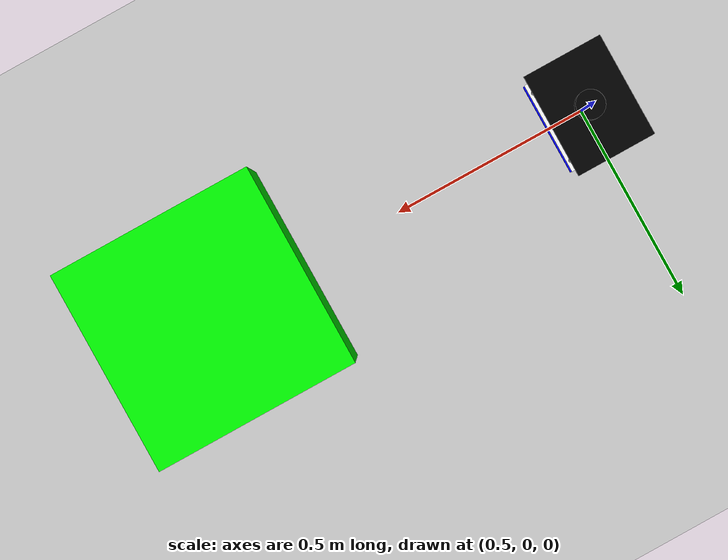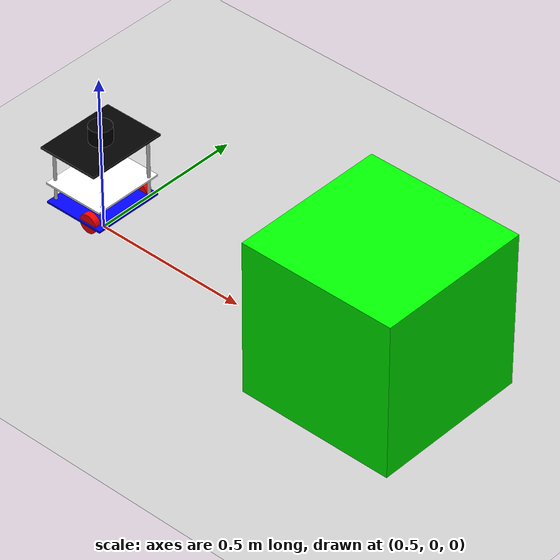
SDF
<?xml version="1.0" ?>
<sdf version="1.8">

  <!--
    Определяем мир (world) под названием "Moving_robot".
    Внутри указываем параметры физики, плагины для симуляции, освещение (sun) и объекты (models).
  -->
  <world name="Moving_robot">

    <physics name="1ms" type="ignored">
      <max_step_size>0.001</max_step_size>
      <real_time_factor>1.0</real_time_factor>
    </physics>

    <plugin filename="gz-sim-physics-system" name="gz::sim::systems::Physics"/>
    <plugin filename="gz-sim-user-commands-system" name="gz::sim::systems::UserCommands"/>
    <plugin filename="gz-sim-scene-broadcaster-system" name="gz::sim::systems::SceneBroadcaster"/>

    <!-- подклюяение плагина сенсоров (в т.ч. лидара) -->
    <plugin
      filename="gz-sim-sensors-system"
      name="gz::sim::systems::Sensors">
      <!-- Обычно указывают движок рендеринга -->
      <render_engine>ogre2</render_engine>
    </plugin>

    <!--
      Настраиваем источник света "sun" (солнечный свет) с заданным направлением,
      интенсивностью (diffuse, specular) и другими параметрами.
    -->
    <light type="directional" name="sun">
      <cast_shadows>true</cast_shadows>
      <pose>0 0 10 0 0 0</pose>
      <diffuse>0.8 0.8 0.8 1</diffuse>
      <specular>0.2 0.2 0.2 1</specular>
      <attenuation>
        <range>1000</range>
        <constant>0.9</constant>
        <linear>0.01</linear>
        <quadratic>0.001</quadratic>
      </attenuation>
      <direction>-0.5 0.1 -0.9</direction>
    </light>

    <!--
      Создаём "землю" (ground_plane) — большая плоскость для пола.
      static=true означает, что объект не участвует в движении, он статичен.
    -->
    <model name="ground_plane">
      <static>true</static>
      <link name="link">
        <collision name="collision">
          <geometry>
            <plane>
              <normal>0 0 1</normal>
            </plane>
          </geometry>
        </collision>
        <visual name="visual">
          <geometry>
            <plane>
              <normal>0 0 1</normal>
              <size>100 100</size>
            </plane>
          </geometry>
          <material>
            <ambient>0.8 0.8 0.8 1</ambient>
            <diffuse>0.8 0.8 0.8 1</diffuse>
            <specular>0.8 0.8 0.8 1</specular>
          </material>
        </visual>
      </link>
    </model>

    <!--
      Модель робота: "my_robot". У него корневым звеном (canonical_link) выступает "chassis".
      pose relative_to='world' означает, что робот будет размещён в абсолютных координатах.
    -->
    <model name='my_robot' canonical_link='chassis'>
      <pose relative_to='world'>0 0 0 0 0 0</pose>

      <link name='chassis'>
        <pose relative_to='__model__'>0.5 0 0.1 0 0 0</pose>
        <inertial>
          <mass>3</mass>
          <inertia>
            <ixx>0.126164</ixx>
            <ixy>0</ixy>
            <ixz>0</ixz>
            <iyy>0.416519</iyy>
            <iyz>0</iyz>
            <izz>0.481014</izz>
          </inertia>
        </inertial>
        <visual name='visual'>
          <geometry>
            <box>
              <size>0.2 0.23 0.006</size>
            </box>
          </geometry>
          <material>
            <ambient>0.0 0.0 1.0 1</ambient>
            <diffuse>0.0 0.0 1.0 1</diffuse>
            <specular>0.0 0.0 1.0 1</specular>
          </material>
        </visual>
        <collision name='collision'>
          <!-- collision важна для реакций физики (сталкивание с объектами) -->
          <geometry>
            <box>
              <size>0.2 0.16 0.006</size>
            </box>
          </geometry>
        </collision>
      </link>

      <link name='left_wheel'>
        <pose relative_to="chassis">0.05 0.10 0 -1.5707 0 0</pose>
        <inertial>
          <mass>0.2</mass>
          <inertia>
            <ixx>0.145833</ixx>
            <ixy>0</ixy>
            <ixz>0</ixz>
            <iyy>0.145833</iyy>
            <iyz>0</iyz>
            <izz>0.125</izz>
          </inertia>
        </inertial>
        <visual name='visual'>
          <geometry>
            <cylinder>
              <radius>0.03</radius>
              <length>0.02</length>
            </cylinder>
          </geometry>
          <material>
            <ambient>1.0 0.0 0.0 1</ambient>
            <diffuse>1.0 0.0 0.0 1</diffuse>
            <specular>1.0 0.0 0.0 1</specular>
          </material>
        </visual>
        <collision name='collision'>
          <geometry>
            <cylinder>
              <radius>0.03</radius>
              <length>0.02</length>
            </cylinder>
          </geometry>
        </collision>
      </link>

      <!--
        Правое колесо (right_wheel).
        Аналогично левому, только y=-0.10.
      -->
      <link name='right_wheel'>
        <pose relative_to="chassis">0.05 -0.10 0 -1.5707 0 0</pose>
        <inertial>
          <mass>0.2</mass>
          <inertia>
            <ixx>0.145833</ixx>
            <ixy>0</ixy>
            <ixz>0</ixz>
            <iyy>0.145833</iyy>
            <iyz>0</iyz>
            <izz>0.125</izz>
          </inertia>
        </inertial>
        <visual name='visual'>
          <geometry>
            <cylinder>
              <radius>0.03</radius>
              <length>0.02</length>
            </cylinder>
          </geometry>
          <material>
            <ambient>1.0 0.0 0.0 1</ambient>
            <diffuse>1.0 0.0 0.0 1</diffuse>
            <specular>1.0 0.0 0.0 1</specular>
          </material>
        </visual>
        <collision name='collision'>
          <geometry>
            <cylinder>
              <radius>0.03</radius>
              <length>0.02</length>
            </cylinder>
          </geometry>
        </collision>
      </link>

      <!--
        frame "caster_frame" привязан к шасси (chassis).
        Это точка, к которой затем крепится link caster (шарообразная опора).
      -->
      <frame name="caster_frame" attached_to='chassis'>
        <pose>-0.07 0 -0.01 0 0 0</pose>
      </frame>

      <!--
        Кастер (caster) - задний опорный шарик.
        Расположен на frame="caster_frame".
        Масса, инерция - условные.
      -->
      <link name='caster'>
        <pose relative_to='caster_frame'/>
        <inertial>
          <mass>0.5</mass>
          <inertia>
            <ixx>0.1</ixx>
            <ixy>0</ixy>
            <ixz>0</ixz>
            <iyy>0.1</iyy>
            <iyz>0</iyz>
            <izz>0.1</izz>
          </inertia>
        </inertial>
        <visual name='visual'>
          <geometry>
            <sphere>
              <radius>0.015</radius>
            </sphere>
          </geometry>
          <material>
            <ambient>0.0 1 0.0 1</ambient>
            <diffuse>0.0 1 0.0 1</diffuse>
            <specular>0.0 1 0.0 1</specular>
          </material>
        </visual>
        <collision name='collision'>
          <geometry>
            <sphere>
              <radius>0.02</radius>
            </sphere>
          </geometry>
        </collision>
      </link>

      <!--
        floor1 - "первый этаж" (промежуточная платформа),
        поднят над шасси на 0.065 м.
        Масса и габариты - условные.
      -->
      <link name="floor1">
        <pose relative_to="chassis">0 0 0.065 0 0 0</pose>
        <inertial>
          <mass>0.8</mass>
          <inertia>
            <ixx>0.01</ixx>
            <ixy>0</ixy>
            <ixz>0</ixz>
            <iyy>0.01</iyy>
            <iyz>0</iyz>
            <izz>0.01</izz>
          </inertia>
        </inertial>
        <visual name="floor1_visual">
          <geometry>
            <box>
              <size>0.2 0.23 0.006</size>
            </box>
          </geometry>
          <material>
            <ambient>1.0 1.0 1.0 1</ambient>
            <diffuse>1.0 1.0 1.0 1</diffuse>
          </material>
        </visual>
        <collision name="floor1_collision">
          <geometry>
            <box>
              <size>0.2 0.23 0.006</size>
            </box>
          </geometry>
        </collision>
      </link>
      <joint name="floor1_joint" type="fixed">
        <parent>chassis</parent>
        <child>floor1</child>
      </joint>

      <!--
        floor2 - "второй этаж" (верхняя платформа),
        на высоте 0.195 над шасси.
      -->
      <link name="floor2">
        <pose relative_to="chassis">0 0 0.195 0 0 0</pose>
        <inertial>
          <mass>0.3</mass>
          <inertia>
            <ixx>0.02</ixx>
            <ixy>0</ixy>
            <ixz>0</ixz>
            <iyy>0.02</iyy>
            <iyz>0</iyz>
            <izz>0.02</izz>
          </inertia>
        </inertial>
        <visual name="floor2_visual">
          <geometry>
            <box>
              <size>0.2 0.26 0.006</size>
            </box>
          </geometry>
          <material>
            <ambient>0.0 0.0 0.0 1</ambient>
            <diffuse>0.0 0.0 0.0 1</diffuse>
          </material>
        </visual>
        <collision name="floor2_collision">
          <geometry>
            <box>
              <size>0.2 0.16 0.006</size>
            </box>
          </geometry>
        </collision>
      </link>
      <joint name="floor2_joint" type="fixed">
        <parent>chassis</parent>
        <child>floor2</child>
      </joint>

      <!-- добавляем действующий лидар с помощью плагина сенсоров -->
      <link name="lidar_link">
        <pose relative_to="floor2">0 0 0.03 0 0 0</pose>
        <inertial>
          <mass>0.2</mass>
          <inertia>
            <ixx>0.001</ixx>
            <ixy>0</ixy>
            <ixz>0</ixz>
            <iyy>0.001</iyy>
            <iyz>0</iyz>
            <izz>0.001</izz>
          </inertia>
        </inertial>
        <visual name="lidar_visual">
          <geometry>
            <cylinder>
              <radius>0.035</radius>
              <length>0.05</length>
            </cylinder>
          </geometry>
          <material>
            <ambient>0 0 0 1</ambient>
            <diffuse>0 0 0 1</diffuse>
          </material>
        </visual>
		    <sensor name="lidar_sensor" type="gpu_ray">
          <frame_id>lidar_link</frame_id>
          <pose>0 0 0 0 0 0</pose>
          <topic>/lidar</topic>
          <update_rate>1</update_rate>
          <ray>
          <scan>
            <horizontal>
            <samples>36</samples>
            <resolution>1</resolution>
            <min_angle>-1.5708</min_angle>
            <max_angle>1.5708</max_angle>
            </horizontal>
            <vertical>
            <samples>1</samples>
            <resolution>0.01</resolution>
            <min_angle>0</min_angle>
            <max_angle>0</max_angle>
            </vertical>
          </scan>
          <range>
            <min>0.08</min>
            <max>2.0</max>
            <resolution>0.01</resolution>
          </range>
          <noise>
            <type>gaussian</type>
            <mean>0.0</mean>
            <stddev>0.01</stddev>
          </noise>
          </ray>
          <always_on>true</always_on>
          <visualize>true</visualize>
        </sensor>
        <collision name="lidar_collision">
          <geometry>
            <cylinder>
              <radius>0.035</radius>
              <length>0.05</length>
            </cylinder>
          </geometry>
        </collision>
      </link>

      <joint name="lidar_joint" type="fixed">
        <parent>floor2</parent>
        <child>lidar_link</child>
      </joint>

      <!--
        Ось вращения левого колеса (left_wheel_joint) - revolute.
        joint подключает parent=chassis, child=left_wheel.
      -->
      <joint name='left_wheel_joint' type='revolute'>
        <pose relative_to='left_wheel'/>
        <parent>chassis</parent>
        <child>left_wheel</child>
        <axis>
          <xyz expressed_in='__model__'>0 1 0</xyz>
          <limit>
            <lower>-1.79769e+308</lower>
            <upper>1.79769e+308</upper>
          </limit>
        </axis>
      </joint>

      <!--
        Аналогично для правого колеса (right_wheel_joint).
      -->
      <joint name='right_wheel_joint' type='revolute'>
        <pose relative_to='right_wheel'/>
        <parent>chassis</parent>
        <child>right_wheel</child>
        <axis>
          <xyz expressed_in='__model__'>0 1 0</xyz>
          <limit>
            <lower>-1.79769e+308</lower>
            <upper>1.79769e+308</upper>
          </limit>
        </axis>
      </joint>

      <!-- Передняя левая стойка -->
      <link name="rod_front_left">
        <pose relative_to="chassis">0.09 0.09 0.1 0 0 0</pose>
        <inertial>
          <mass>0.05</mass>
          <inertia>
            <ixx>1e-5</ixx>
            <ixy>0</ixy>
            <ixz>0</ixz>
            <iyy>1e-5</iyy>
            <iyz>0</iyz>
            <izz>1e-5</izz>
          </inertia>
        </inertial>
        <visual name="visual">
          <geometry>
            <cylinder>
              <radius>0.005</radius>
              <length>0.195</length>
            </cylinder>
          </geometry>
          <material>
            <ambient>0.8 0.8 0.8 1</ambient>
            <diffuse>0.8 0.8 0.8 1</diffuse>
            <specular>0.8 0.8 0.8 1</specular>
          </material>
        </visual>
        <collision name="collision">
          <geometry>
            <cylinder>
              <radius>0.005</radius>
              <length>0.195</length>
            </cylinder>
          </geometry>
        </collision>
      </link>
      <joint name="rod_front_left_joint" type="fixed">
        <parent>chassis</parent>
        <child>rod_front_left</child>
      </joint>

      <!-- Передняя правая стойка -->
      <link name="rod_front_right">
        <pose relative_to="chassis">0.09 -0.09 0.1 0 0 0</pose>
        <inertial>
          <mass>0.05</mass>
          <inertia>
            <ixx>1e-5</ixx>
            <ixy>0</ixy>
            <ixz>0</ixz>
            <iyy>1e-5</iyy>
            <iyz>0</iyz>
            <izz>1e-5</izz>
          </inertia>
        </inertial>
        <visual name="visual">
          <geometry>
            <cylinder>
              <radius>0.005</radius>
              <length>0.195</length>
            </cylinder>
          </geometry>
          <material>
            <ambient>0.8 0.8 0.8 1</ambient>
            <diffuse>0.8 0.8 0.8 1</diffuse>
            <specular>0.8 0.8 0.8 1</specular>
          </material>
        </visual>
        <collision name="collision">
          <geometry>
            <cylinder>
              <radius>0.005</radius>
              <length>0.195</length>
            </cylinder>
          </geometry>
        </collision>
      </link>
      <joint name="rod_front_right_joint" type="fixed">
        <parent>chassis</parent>
        <child>rod_front_right</child>
      </joint>

      <!-- Задняя левая стойка -->
      <link name="rod_rear_left">
        <pose relative_to="chassis">-0.09 0.09 0.1 0 0 0</pose>
        <inertial>
          <mass>0.05</mass>
          <inertia>
            <ixx>1e-5</ixx>
            <ixy>0</ixy>
            <ixz>0</ixz>
            <iyy>1e-5</iyy>
            <iyz>0</iyz>
            <izz>1e-5</izz>
          </inertia>
        </inertial>
        <visual name="visual">
          <geometry>
            <cylinder>
              <radius>0.005</radius>
              <length>0.195</length>
            </cylinder>
          </geometry>
          <material>
            <ambient>0.8 0.8 0.8 1</ambient>
            <diffuse>0.8 0.8 0.8 1</diffuse>
            <specular>0.8 0.8 0.8 1</specular>
          </material>
        </visual>
        <collision name="collision">
          <geometry>
            <cylinder>
              <radius>0.005</radius>
              <length>0.195</length>
            </cylinder>
          </geometry>
        </collision>
      </link>
      <joint name="rod_rear_left_joint" type="fixed">
        <parent>chassis</parent>
        <child>rod_rear_left</child>
      </joint>

      <!-- Задняя правая стойка -->
      <link name="rod_rear_right">
        <pose relative_to="chassis">-0.09 -0.09 0.1 0 0 0</pose>
        <inertial>
          <mass>0.05</mass>
          <inertia>
            <ixx>1e-5</ixx>
            <ixy>0</ixy>
            <ixz>0</ixz>
            <iyy>1e-5</iyy>
            <iyz>0</iyz>
            <izz>1e-5</izz>
          </inertia>
        </inertial>
        <visual name="visual">
          <geometry>
            <cylinder>
              <radius>0.005</radius>
              <length>0.195</length>
            </cylinder>
          </geometry>
          <material>
            <ambient>0.8 0.8 0.8 1</ambient>
            <diffuse>0.8 0.8 0.8 1</diffuse>
            <specular>0.8 0.8 0.8 1</specular>
          </material>
        </visual>
        <collision name="collision">
          <geometry>
            <cylinder>
              <radius>0.005</radius>
              <length>0.195</length>
            </cylinder>
          </geometry>
        </collision>
      </link>
      <joint name="rod_rear_right_joint" type="fixed">
        <parent>chassis</parent>
        <child>rod_rear_right</child>
      </joint>

      <!--
        Соединение caster'а (задний шар) с шасси через шаровой joint (type='ball').
      -->
      <joint name='caster_wheel' type='ball'>
        <parent>chassis</parent>
        <child>caster</child>
      </joint>

      <plugin filename="gz-sim-diff-drive-system" name="gz::sim::systems::DiffDrive">
        <left_joint>left_wheel_joint</left_joint>
        <right_joint>right_wheel_joint</right_joint>
        <wheel_separation>0.19</wheel_separation>
        <wheel_radius>0.032</wheel_radius>
        <odom_publish_frequency>1</odom_publish_frequency>
        <topic>cmd_vel</topic>
      </plugin>
    </model>

    <!--
      "green_cube" — зелёный кубик, размером 50x50x50 мм (0.05 м),
      располагается на x=1.5 (чуть впереди робота).
    -->
    <model name="green_cube">
      <pose>1.5 0 0.25 0 0 0</pose>
      <link name="cube_link">
        <inertial>
          <mass>0.2</mass>
          <inertia>
            <ixx>1e-4</ixx>
            <ixy>0</ixy>
            <ixz>0</ixz>
            <iyy>1e-4</iyy>
            <iyz>0</iyz>
            <izz>1e-4</izz>
          </inertia>
        </inertial>
        <visual name="visual">
          <geometry>
            <box>
              <size>0.5 0.5 0.5</size>
            </box>
          </geometry>
          <material>
            <ambient>0 1 0 1</ambient>
            <diffuse>0 1 0 1</diffuse>
            <specular>0 1 0 1</specular>
          </material>
        </visual>
        <collision name="collision">
          <geometry>
            <box>
              <size>0.5 0.5 0.5</size>
            </box>
          </geometry>
        </collision>
      </link>
    </model>

    <!--
      Плагины для движения робота с клавиатуры (TriggeredPublisher).
      При нажатии определённых клавиш (16777234, 16777235 и т.д.)
      публикуется Twist на топик /cmd_vel.
    -->
    <!-- Moving Left-->
    <plugin filename="gz-sim-triggered-publisher-system" name="gz::sim::systems::TriggeredPublisher">
      <input type="gz.msgs.Int32" topic="/keyboard/keypress">
        <match field="data">16777234</match>
      </input>
      <output type="gz.msgs.Twist" topic="/cmd_vel">
        linear: {x: 0.0}, angular: {z: 0.5}
      </output>
    </plugin>

    <!-- Moving Forward-->
    <plugin filename="gz-sim-triggered-publisher-system" name="gz::sim::systems::TriggeredPublisher">
      <input type="gz.msgs.Int32" topic="/keyboard/keypress">
        <match field="data">16777235</match>
      </input>
      <output type="gz.msgs.Twist" topic="/cmd_vel">
        linear: {x: 0.5}, angular: {z: 0.0}
      </output>
    </plugin>

    <!-- Moving Right-->
    <plugin filename="gz-sim-triggered-publisher-system" name="gz::sim::systems::TriggeredPublisher">
      <input type="gz.msgs.Int32" topic="/keyboard/keypress">
        <match field="data">16777236</match>
      </input>
      <output type="gz.msgs.Twist" topic="/cmd_vel">
        linear: {x: 0.0}, angular: {z: -0.5}
      </output>
    </plugin>

    <!-- Moving Backward-->
    <plugin filename="gz-sim-triggered-publisher-system" name="gz::sim::systems::TriggeredPublisher">
      <input type="gz.msgs.Int32" topic="/keyboard/keypress">
        <match field="data">16777237</match>
      </input>
      <output type="gz.msgs.Twist" topic="/cmd_vel">
        linear: {x: -0.5}, angular: {z: 0.0}
      </output>
    </plugin>

  </world>
</sdf>
